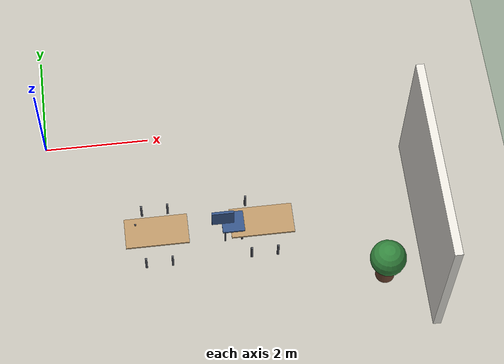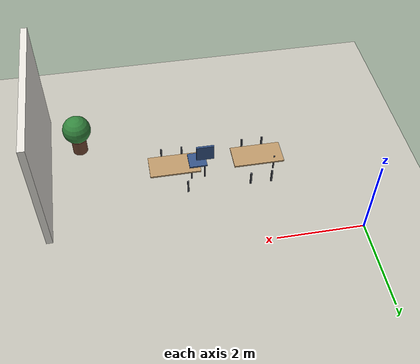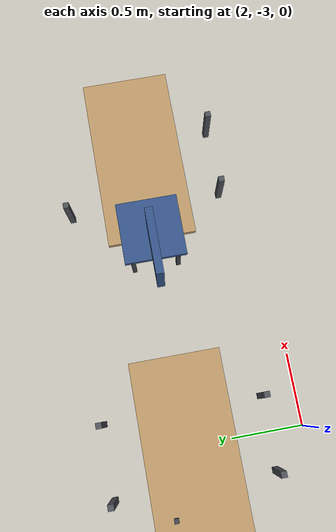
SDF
<sdf version="1.8">
 <world name="drona_advising">
  <model name="ground_plane">
   <static>true</static>
   <link name="link">
    <collision name="collision">
     <geometry><plane><normal>0 0 1</normal><size>20 20</size></plane></geometry>
    </collision>
    <visual name="visual">
     <geometry><plane><normal>0 0 1</normal><size>20 20</size></plane></geometry>
     <material><ambient>0.75 0.74 0.7 1</ambient><diffuse>0.75 0.74 0.7 1</diffuse></material>
    </visual>
   </link>
  </model>
  <model name="wall_front_b">
   <static>true</static>
   <pose>7 -2.6 1.5 0 0 0</pose>
   <link name="link">
    <collision name="collision"><geometry><box><size>0.15 3.8 3</size></box></geometry></collision>
    <visual name="visual">
     <geometry><box><size>0.15 3.8 3</size></box></geometry>
     <material>
      <ambient>0.9 0.89 0.86 1</ambient>
      <diffuse>0.9 0.89 0.86 1</diffuse>
      <specular>0.1 0.1 0.1 1</specular>
     </material>
    </visual>
   </link>
  </model>
  <model name="student_desk_1">
   <static>true</static>
   <pose>2.0 -2.2 0.37 0 0 1.5708</pose>
   <link name="link">
    <collision name="collision"><geometry><box><size>0.60 1.20 0.04</size></box></geometry></collision>
    <visual name="visual">
     <geometry><box><size>0.60 1.20 0.04</size></box></geometry>
     <material>
      <ambient>0.72 0.58 0.4 1</ambient>
      <diffuse>0.72 0.58 0.4 1</diffuse>
      <specular>0.1 0.1 0.1 1</specular>
     </material>
    </visual>
   </link>
  </model>
  <model name="student_desk_1_leg0">
   <static>true</static>
   <pose>1.75 -2.75 0.18 0 0 1.5708</pose>
   <link name="link">
    <collision name="collision"><geometry><box><size>0.04 0.04 0.36</size></box></geometry></collision>
    <visual name="visual">
     <geometry><box><size>0.04 0.04 0.36</size></box></geometry>
     <material>
      <ambient>0.3 0.31 0.34 1</ambient>
      <diffuse>0.3 0.31 0.34 1</diffuse>
      <specular>0.1 0.1 0.1 1</specular>
     </material>
    </visual>
   </link>
  </model>
  <model name="student_desk_1_leg1">
   <static>true</static>
   <pose>2.25 -2.75 0.18 0 0 1.5708</pose>
   <link name="link">
    <collision name="collision"><geometry><box><size>0.04 0.04 0.36</size></box></geometry></collision>
    <visual name="visual">
     <geometry><box><size>0.04 0.04 0.36</size></box></geometry>
     <material>
      <ambient>0.3 0.31 0.34 1</ambient>
      <diffuse>0.3 0.31 0.34 1</diffuse>
      <specular>0.1 0.1 0.1 1</specular>
     </material>
    </visual>
   </link>
  </model>
  <model name="student_desk_1_leg2">
   <static>true</static>
   <pose>1.75 -1.6500000000000001 0.18 0 0 1.5708</pose>
   <link name="link">
    <collision name="collision"><geometry><box><size>0.04 0.04 0.36</size></box></geometry></collision>
    <visual name="visual">
     <geometry><box><size>0.04 0.04 0.36</size></box></geometry>
     <material>
      <ambient>0.3 0.31 0.34 1</ambient>
      <diffuse>0.3 0.31 0.34 1</diffuse>
      <specular>0.1 0.1 0.1 1</specular>
     </material>
    </visual>
   </link>
  </model>
  <model name="student_desk_1_leg3">
   <static>true</static>
   <pose>2.25 -1.6500000000000001 0.18 0 0 1.5708</pose>
   <link name="link">
    <collision name="collision"><geometry><box><size>0.04 0.04 0.36</size></box></geometry></collision>
    <visual name="visual">
     <geometry><box><size>0.04 0.04 0.36</size></box></geometry>
     <material>
      <ambient>0.3 0.31 0.34 1</ambient>
      <diffuse>0.3 0.31 0.34 1</diffuse>
      <specular>0.1 0.1 0.1 1</specular>
     </material>
    </visual>
   </link>
  </model>
  <model name="student_chair_1_leg3">
   <static>true</static>
   <pose>1.6099999999999999 -2.04 0.21 0 0 1.5708</pose>
   <link name="link">
    <collision name="collision"><geometry><box><size>0.03 0.03 0.42</size></box></geometry></collision>
    <visual name="visual">
     <geometry><box><size>0.03 0.03 0.42</size></box></geometry>
     <material>
      <ambient>0.25 0.26 0.3 1</ambient>
      <diffuse>0.25 0.26 0.3 1</diffuse>
      <specular>0.1 0.1 0.1 1</specular>
     </material>
    </visual>
   </link>
  </model>
  <model name="student_desk_3">
   <static>true</static>
   <pose>4.0 -2.2 0.37 0 0 1.5708</pose>
   <link name="link">
    <collision name="collision"><geometry><box><size>0.60 1.20 0.04</size></box></geometry></collision>
    <visual name="visual">
     <geometry><box><size>0.60 1.20 0.04</size></box></geometry>
     <material>
      <ambient>0.72 0.58 0.4 1</ambient>
      <diffuse>0.72 0.58 0.4 1</diffuse>
      <specular>0.1 0.1 0.1 1</specular>
     </material>
    </visual>
   </link>
  </model>
  <model name="student_desk_3_leg0">
   <static>true</static>
   <pose>3.75 -2.75 0.18 0 0 1.5708</pose>
   <link name="link">
    <collision name="collision"><geometry><box><size>0.04 0.04 0.36</size></box></geometry></collision>
    <visual name="visual">
     <geometry><box><size>0.04 0.04 0.36</size></box></geometry>
     <material>
      <ambient>0.3 0.31 0.34 1</ambient>
      <diffuse>0.3 0.31 0.34 1</diffuse>
      <specular>0.1 0.1 0.1 1</specular>
     </material>
    </visual>
   </link>
  </model>
  <model name="student_desk_3_leg1">
   <static>true</static>
   <pose>4.25 -2.75 0.18 0 0 1.5708</pose>
   <link name="link">
    <collision name="collision"><geometry><box><size>0.04 0.04 0.36</size></box></geometry></collision>
    <visual name="visual">
     <geometry><box><size>0.04 0.04 0.36</size></box></geometry>
     <material>
      <ambient>0.3 0.31 0.34 1</ambient>
      <diffuse>0.3 0.31 0.34 1</diffuse>
      <specular>0.1 0.1 0.1 1</specular>
     </material>
    </visual>
   </link>
  </model>
  <model name="student_desk_3_leg2">
   <static>true</static>
   <pose>3.75 -1.6500000000000001 0.18 0 0 1.5708</pose>
   <link name="link">
    <collision name="collision"><geometry><box><size>0.04 0.04 0.36</size></box></geometry></collision>
    <visual name="visual">
     <geometry><box><size>0.04 0.04 0.36</size></box></geometry>
     <material>
      <ambient>0.3 0.31 0.34 1</ambient>
      <diffuse>0.3 0.31 0.34 1</diffuse>
      <specular>0.1 0.1 0.1 1</specular>
     </material>
    </visual>
   </link>
  </model>
  <model name="student_chair_3">
   <static>true</static>
   <pose>3.45 -2.2 0.44 0 0 1.5708</pose>
   <link name="link">
    <collision name="collision"><geometry><box><size>0.42 0.42 0.04</size></box></geometry></collision>
    <visual name="visual">
     <geometry><box><size>0.42 0.42 0.04</size></box></geometry>
     <material>
      <ambient>0.2 0.32 0.52 1</ambient>
      <diffuse>0.2 0.32 0.52 1</diffuse>
      <specular>0.1 0.1 0.1 1</specular>
     </material>
    </visual>
   </link>
  </model>
  <model name="student_chair_3_back">
   <static>true</static>
   <pose>3.26 -2.2 0.66 0 0 1.5708</pose>
   <link name="link">
    <collision name="collision"><geometry><box><size>0.05 0.42 0.42</size></box></geometry></collision>
    <visual name="visual">
     <geometry><box><size>0.05 0.42 0.42</size></box></geometry>
     <material>
      <ambient>0.2 0.32 0.52 1</ambient>
      <diffuse>0.2 0.32 0.52 1</diffuse>
      <specular>0.1 0.1 0.1 1</specular>
     </material>
    </visual>
   </link>
  </model>
  <model name="student_chair_3_leg0">
   <static>true</static>
   <pose>3.29 -2.3600000000000003 0.21 0 0 1.5708</pose>
   <link name="link">
    <collision name="collision"><geometry><box><size>0.03 0.03 0.42</size></box></geometry></collision>
    <visual name="visual">
     <geometry><box><size>0.03 0.03 0.42</size></box></geometry>
     <material>
      <ambient>0.25 0.26 0.3 1</ambient>
      <diffuse>0.25 0.26 0.3 1</diffuse>
      <specular>0.1 0.1 0.1 1</specular>
     </material>
    </visual>
   </link>
  </model>
  <model name="student_chair_3_leg1">
   <static>true</static>
   <pose>3.6100000000000003 -2.3600000000000003 0.21 0 0 1.5708</pose>
   <link name="link">
    <collision name="collision"><geometry><box><size>0.03 0.03 0.42</size></box></geometry></collision>
    <visual name="visual">
     <geometry><box><size>0.03 0.03 0.42</size></box></geometry>
     <material>
      <ambient>0.25 0.26 0.3 1</ambient>
      <diffuse>0.25 0.26 0.3 1</diffuse>
      <specular>0.1 0.1 0.1 1</specular>
     </material>
    </visual>
   </link>
  </model>
  <model name="student_chair_3_leg2">
   <static>true</static>
   <pose>3.29 -2.04 0.21 0 0 1.5708</pose>
   <link name="link">
    <collision name="collision"><geometry><box><size>0.03 0.03 0.42</size></box></geometry></collision>
    <visual name="visual">
     <geometry><box><size>0.03 0.03 0.42</size></box></geometry>
     <material>
      <ambient>0.25 0.26 0.3 1</ambient>
      <diffuse>0.25 0.26 0.3 1</diffuse>
      <specular>0.1 0.1 0.1 1</specular>
     </material>
    </visual>
   </link>
  </model>
  <model name="student_chair_3_leg3">
   <static>true</static>
   <pose>3.6100000000000003 -2.04 0.21 0 0 1.5708</pose>
   <link name="link">
    <collision name="collision"><geometry><box><size>0.03 0.03 0.42</size></box></geometry></collision>
    <visual name="visual">
     <geometry><box><size>0.03 0.03 0.42</size></box></geometry>
     <material>
      <ambient>0.25 0.26 0.3 1</ambient>
      <diffuse>0.25 0.26 0.3 1</diffuse>
      <specular>0.1 0.1 0.1 1</specular>
     </material>
    </visual>
   </link>
  </model>
  <model name="plant_3">
   <static>true</static>
   <pose>6.2 -3.4 0 0 0 0</pose>
   <link name="link">
    <collision name="collision">
     <pose>0 0 0.2 0 0 0</pose>
     <geometry><cylinder><radius>0.18</radius><length>0.4</length></cylinder></geometry>
    </collision>
    <visual name="pot">
     <pose>0 0 0.2 0 0 0</pose>
     <geometry><cylinder><radius>0.18</radius><length>0.4</length></cylinder></geometry>
     <material><ambient>0.45 0.28 0.20 1</ambient><diffuse>0.45 0.28 0.20 1</diffuse></material>
    </visual>
    <visual name="foliage">
     <pose>0 0 0.72 0 0 0</pose>
     <geometry><sphere><radius>0.34</radius></sphere></geometry>
     <material><ambient>0.16 0.42 0.20 1</ambient><diffuse>0.20 0.52 0.24 1</diffuse></material>
    </visual>
   </link>
  </model>
 </world>
</sdf>
